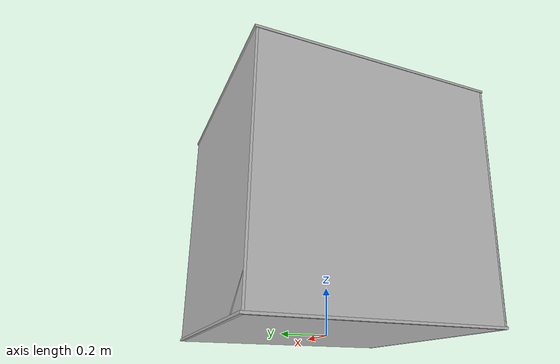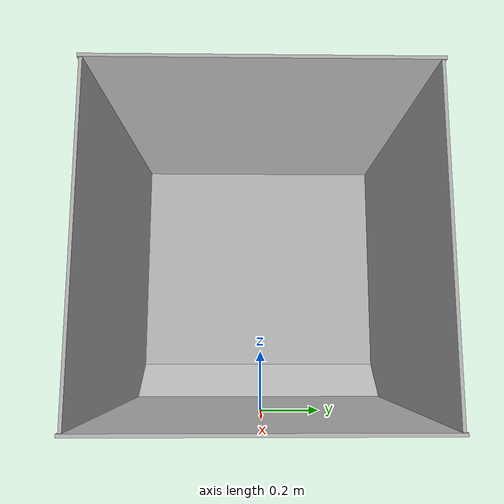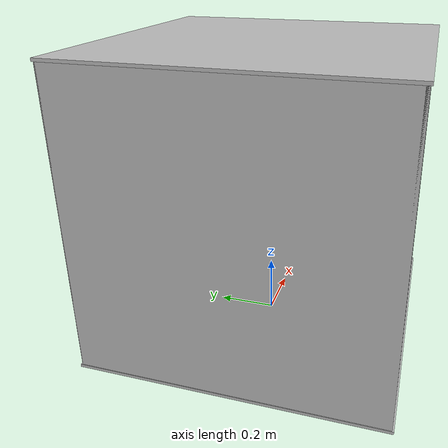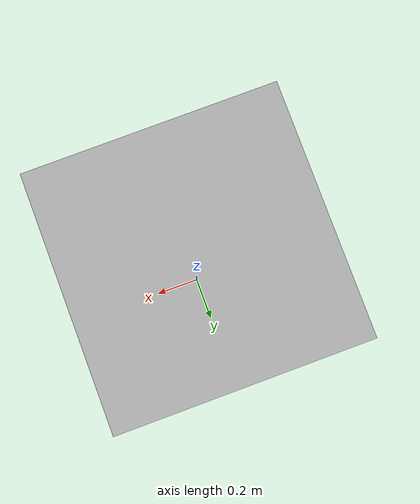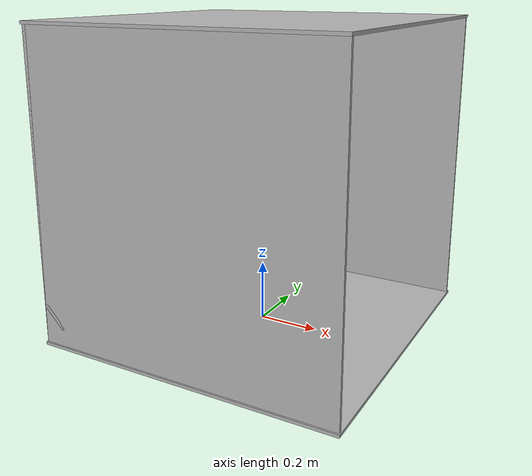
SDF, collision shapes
<?xml version="1.0" ?>
<sdf version="1.6">
  <model name="Lightbox">
    <link name="lightbox_link">
      <visual name="lightbox_visual">
        <geometry>
          <mesh>
            <uri>lightbox_visual.glb</uri>
          </mesh>
        </geometry>
      </visual>
      <collision name="cube_collider_box">
        <pose>0.0 0.503174 0.508 0.0 0.0 0.0</pose>
        <geometry>
          <box>
            <size>1.016 0.009652 1.016</size>
          </box>
        </geometry>
      </collision>
      <collision name="cube_collider_box.001">
        <pose>0.0 0.0 0.005 0.0 0.0 0.0</pose>
        <geometry>
          <box>
            <size>1.021 1.026 0.01</size>
          </box>
        </geometry>
      </collision>
      <collision name="cube_collider_box.002">
        <pose>-0.50165 0.0 0.508 0.0 0.0 0.0</pose>
        <geometry>
          <box>
            <size>0.0127 1.016 1.016</size>
          </box>
        </geometry>
      </collision>
      <collision name="cube_collider_box.003">
        <pose>0.0 -0.503174 0.508 0.0 0.0 0.0</pose>
        <geometry>
          <box>
            <size>1.016 0.009652 1.016</size>
          </box>
        </geometry>
      </collision>
      <collision name="cube_collider_box.004">
        <pose>0.0 0.0 1.016 0.0 0.0 0.0</pose>
        <geometry>
          <box>
            <size>1.021 1.026 0.01</size>
          </box>
        </geometry>
      </collision>
      <collision name="cube_collider_box.005">
        <pose>-0.437799 0.0 0.070301 0.0 -0.785398 0.0</pose>
        <geometry>
          <box>
            <size>0.0127 1.016 0.184146</size>
          </box>
        </geometry>
      </collision>
    </link>
  </model>
</sdf>
